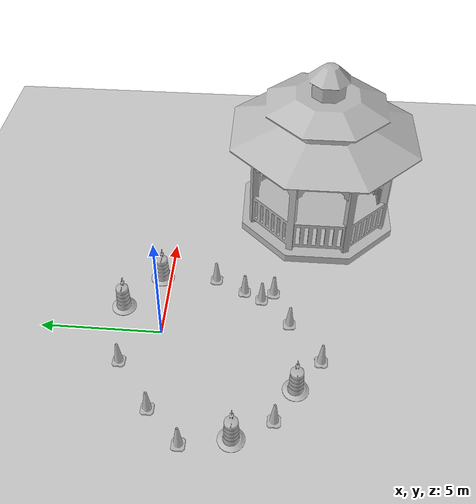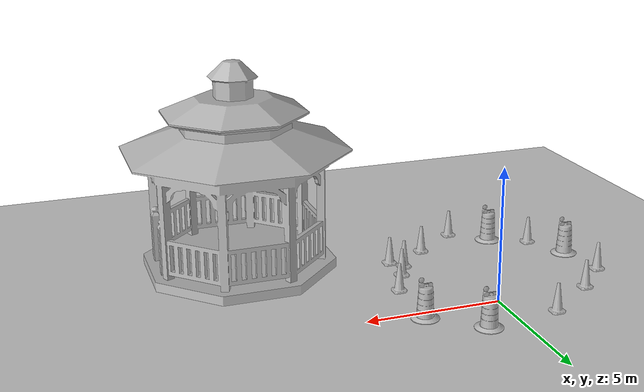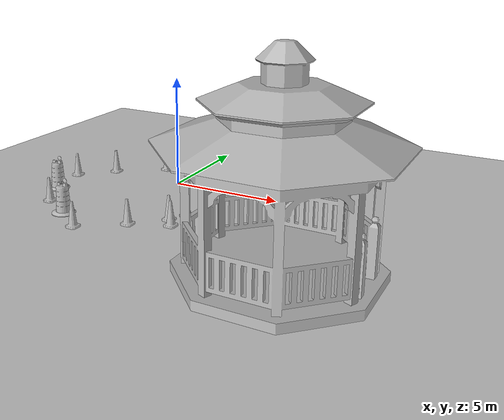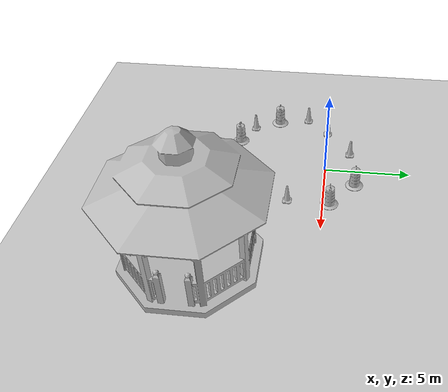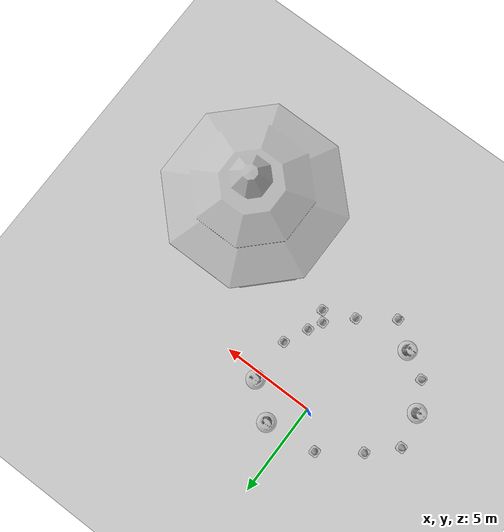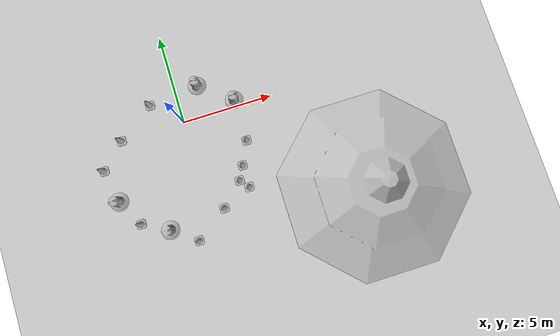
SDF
<sdf version="1.7">
 <world name="default">
  <light name="sun" type="directional">
   <pose>0 0 10 0 -0 0</pose>
   <diffuse>0.8 0.8 0.8 1</diffuse>
   <specular>0.2 0.2 0.2 1</specular>
   <attenuation>
    <range>1000</range>
    <constant>0.9</constant>
    <linear>0.01</linear>
    <quadratic>0.001</quadratic>
   </attenuation>
   <direction>-0.5 0.1 -0.9</direction>
   <spot><inner_angle>0</inner_angle><outer_angle>0</outer_angle><falloff>0</falloff></spot>
  </light>
  <model name="ground_plane">
   <static>1</static>
   <link name="link">
    <collision name="collision">
     <geometry><plane><normal>0 0 1</normal><size>100 100</size></plane></geometry>
     <surface>
      <contact><collide_bitmask>65535</collide_bitmask></contact>
      <friction><ode><mu>100</mu><mu2>50</mu2></ode></friction>
     </surface>
    </collision>
    <visual name="visual">
     <cast_shadows>0</cast_shadows>
     <geometry><plane><normal>0 0 1</normal><size>100 100</size></plane></geometry>
     <material>
      <script><uri>file://media/materials/scripts/gazebo.material</uri><name>Gazebo/Grey</name></script>
     </material>
    </visual>
   </link>
  </model>
  <gravity>0 0 -9.8</gravity>
  <magnetic_field>6e-06 2.3e-05 -4.2e-05</magnetic_field>
  <atmosphere type="adiabatic"/>
  <physics type="ode">
   <max_step_size>0.001</max_step_size>
   <real_time_factor>1</real_time_factor>
   <real_time_update_rate>1000</real_time_update_rate>
  </physics>
  <scene><ambient>0.4 0.4 0.4 1</ambient><background>0.7 0.7 0.7 1</background><shadows>1</shadows></scene>
  <spherical_coordinates>
   <surface_model>EARTH_WGS84</surface_model>
   <latitude_deg>0</latitude_deg>
   <longitude_deg>0</longitude_deg>
   <elevation>0</elevation>
   <heading_deg>0</heading_deg>
  </spherical_coordinates>
  <model name="Construction Barrel">
   <link name="link">
    <inertial>
     <pose>0 0 0.4 0 -0 0</pose>
     <mass>500</mass>
     <inertia><ixx>51.2096</ixx><iyy>51.2096</iyy><izz>25</izz><ixy>0</ixy><ixz>0</ixz><iyz>0</iyz></inertia>
    </inertial>
    <collision name="collision">
     <geometry><mesh><uri>model://construction_barrel/meshes/construction_barrel.dae</uri></mesh></geometry>
    </collision>
    <visual name="visual">
     <geometry><mesh><uri>model://construction_barrel/meshes/construction_barrel.dae</uri></mesh></geometry>
    </visual>
   </link>
   <pose>1.25835 1.76329 -2e-06 7e-06 -2e-06 -3.8e-05</pose>
  </model>
  <model name="Construction Barrel_0">
   <link name="link">
    <inertial>
     <pose>0 0 0.4 0 -0 0</pose>
     <mass>500</mass>
     <inertia><ixx>51.2096</ixx><iyy>51.2096</iyy><izz>25</izz><ixy>0</ixy><ixz>0</ixz><iyz>0</iyz></inertia>
    </inertial>
    <collision name="collision">
     <geometry><mesh><uri>model://construction_barrel/meshes/construction_barrel.dae</uri></mesh></geometry>
    </collision>
    <visual name="visual">
     <geometry><mesh><uri>model://construction_barrel/meshes/construction_barrel.dae</uri></mesh></geometry>
    </visual>
   </link>
   <pose>3.00366 0.377056 -2e-06 7e-06 -2e-06 -4e-05</pose>
  </model>
  <model name="Construction Cone">
   <link name="link">
    <collision name="collision">
     <geometry>
      <mesh><scale>10 10 10</scale><uri>model://construction_cone/meshes/construction_cone.dae</uri></mesh>
     </geometry>
    </collision>
    <visual name="visual">
     <geometry>
      <mesh><scale>10 10 10</scale><uri>model://construction_cone/meshes/construction_cone.dae</uri></mesh>
     </geometry>
    </visual>
    <inertial>
     <inertia><ixx>1</ixx><ixy>0</ixy><ixz>0</ixz><iyy>1</iyy><iyz>0</iyz><izz>1</izz></inertia>
     <mass>1</mass>
    </inertial>
   </link>
   <pose>-4.901 -1.32267 -5e-06 -4e-06 1e-06 0</pose>
  </model>
  <model name="Construction Cone_0">
   <link name="link">
    <collision name="collision">
     <geometry>
      <mesh><scale>10 10 10</scale><uri>model://construction_cone/meshes/construction_cone.dae</uri></mesh>
     </geometry>
    </collision>
    <visual name="visual">
     <geometry>
      <mesh><scale>10 10 10</scale><uri>model://construction_cone/meshes/construction_cone.dae</uri></mesh>
     </geometry>
    </visual>
    <inertial>
     <inertia><ixx>1</ixx><ixy>0</ixy><ixz>0</ixz><iyy>1</iyy><iyz>0</iyz><izz>1</izz></inertia>
     <mass>1</mass>
    </inertial>
   </link>
   <pose>2 -4 -5e-06 -4e-06 1e-06 0</pose>
  </model>
  <model name="Construction Cone_1">
   <link name="link">
    <collision name="collision">
     <geometry>
      <mesh><scale>10 10 10</scale><uri>model://construction_cone/meshes/construction_cone.dae</uri></mesh>
     </geometry>
    </collision>
    <visual name="visual">
     <geometry>
      <mesh><scale>10 10 10</scale><uri>model://construction_cone/meshes/construction_cone.dae</uri></mesh>
     </geometry>
    </visual>
    <inertial>
     <inertia><ixx>1</ixx><ixy>0</ixy><ixz>0</ixz><iyy>1</iyy><iyz>0</iyz><izz>1</izz></inertia>
     <mass>1</mass>
    </inertial>
   </link>
   <pose>0.772738 -5.18401 -0 0 -0 0</pose>
  </model>
  <model name="Construction Cone_2">
   <link name="link">
    <collision name="collision">
     <geometry>
      <mesh><scale>10 10 10</scale><uri>model://construction_cone/meshes/construction_cone.dae</uri></mesh>
     </geometry>
    </collision>
    <visual name="visual">
     <geometry>
      <mesh><scale>10 10 10</scale><uri>model://construction_cone/meshes/construction_cone.dae</uri></mesh>
     </geometry>
    </visual>
    <inertial>
     <inertia><ixx>1</ixx><ixy>0</ixy><ixz>0</ixz><iyy>1</iyy><iyz>0</iyz><izz>1</izz></inertia>
     <mass>1</mass>
    </inertial>
   </link>
   <pose>3 -2 -0 0 -0 0</pose>
  </model>
  <model name="Construction Cone_3">
   <link name="link">
    <collision name="collision">
     <geometry>
      <mesh><scale>10 10 10</scale><uri>model://construction_cone/meshes/construction_cone.dae</uri></mesh>
     </geometry>
    </collision>
    <visual name="visual">
     <geometry>
      <mesh><scale>10 10 10</scale><uri>model://construction_cone/meshes/construction_cone.dae</uri></mesh>
     </geometry>
    </visual>
    <inertial>
     <inertia><ixx>1</ixx><ixy>0</ixy><ixz>0</ixz><iyy>1</iyy><iyz>0</iyz><izz>1</izz></inertia>
     <mass>1</mass>
    </inertial>
   </link>
   <pose>-1.54396 1.4514 -9e-06 -1e-06 -0 -0</pose>
  </model>
  <model name="Construction Cone_4">
   <link name="link">
    <collision name="collision">
     <geometry>
      <mesh><scale>10 10 10</scale><uri>model://construction_cone/meshes/construction_cone.dae</uri></mesh>
     </geometry>
    </collision>
    <visual name="visual">
     <geometry>
      <mesh><scale>10 10 10</scale><uri>model://construction_cone/meshes/construction_cone.dae</uri></mesh>
     </geometry>
    </visual>
    <inertial>
     <inertia><ixx>1</ixx><ixy>0</ixy><ixz>0</ixz><iyy>1</iyy><iyz>0</iyz><izz>1</izz></inertia>
     <mass>1</mass>
    </inertial>
   </link>
   <pose>-1 -6.44429 -0 0 -0 0</pose>
  </model>
  <model name="Construction Cone_5">
   <link name="link">
    <collision name="collision">
     <geometry>
      <mesh><scale>10 10 10</scale><uri>model://construction_cone/meshes/construction_cone.dae</uri></mesh>
     </geometry>
    </collision>
    <visual name="visual">
     <geometry>
      <mesh><scale>10 10 10</scale><uri>model://construction_cone/meshes/construction_cone.dae</uri></mesh>
     </geometry>
    </visual>
    <inertial>
     <inertia><ixx>1</ixx><ixy>0</ixy><ixz>0</ixz><iyy>1</iyy><iyz>0</iyz><izz>1</izz></inertia>
     <mass>1</mass>
    </inertial>
   </link>
   <pose>2.38815 -3.2576 -0 0 -1e-06 0</pose>
  </model>
  <model name="Construction Cone_6">
   <link name="link">
    <collision name="collision">
     <geometry>
      <mesh><scale>10 10 10</scale><uri>model://construction_cone/meshes/construction_cone.dae</uri></mesh>
     </geometry>
    </collision>
    <visual name="visual">
     <geometry>
      <mesh><scale>10 10 10</scale><uri>model://construction_cone/meshes/construction_cone.dae</uri></mesh>
     </geometry>
    </visual>
    <inertial>
     <inertia><ixx>1</ixx><ixy>0</ixy><ixz>0</ixz><iyy>1</iyy><iyz>0</iyz><izz>1</izz></inertia>
     <mass>1</mass>
    </inertial>
   </link>
   <pose>2.39316 -4.49605 -5e-06 -3e-06 -0 -0</pose>
  </model>
  <model name="Construction Cone_7">
   <link name="link">
    <collision name="collision">
     <geometry>
      <mesh><scale>10 10 10</scale><uri>model://construction_cone/meshes/construction_cone.dae</uri></mesh>
     </geometry>
    </collision>
    <visual name="visual">
     <geometry>
      <mesh><scale>10 10 10</scale><uri>model://construction_cone/meshes/construction_cone.dae</uri></mesh>
     </geometry>
    </visual>
    <inertial>
     <inertia><ixx>1</ixx><ixy>0</ixy><ixz>0</ixz><iyy>1</iyy><iyz>0</iyz><izz>1</izz></inertia>
     <mass>1</mass>
    </inertial>
   </link>
   <pose>-3.73276 -4.6753 -0 0 -0 0</pose>
  </model>
  <model name="Construction Cone_8">
   <link name="link">
    <collision name="collision">
     <geometry>
      <mesh><scale>10 10 10</scale><uri>model://construction_cone/meshes/construction_cone.dae</uri></mesh>
     </geometry>
    </collision>
    <visual name="visual">
     <geometry>
      <mesh><scale>10 10 10</scale><uri>model://construction_cone/meshes/construction_cone.dae</uri></mesh>
     </geometry>
    </visual>
    <inertial>
     <inertia><ixx>1</ixx><ixy>0</ixy><ixz>0</ixz><iyy>1</iyy><iyz>0</iyz><izz>1</izz></inertia>
     <mass>1</mass>
    </inertial>
   </link>
   <pose>-3.56564 0 -0 0 -1e-06 0</pose>
  </model>
  <model name="Construction Barrel_1">
   <link name="link">
    <inertial>
     <pose>0 0 0.4 0 -0 0</pose>
     <mass>500</mass>
     <inertia><ixx>51.2096</ixx><iyy>51.2096</iyy><izz>25</izz><ixy>0</ixy><ixz>0</ixz><iyz>0</iyz></inertia>
    </inertial>
    <collision name="collision">
     <geometry><mesh><uri>model://construction_barrel/meshes/construction_barrel.dae</uri></mesh></geometry>
    </collision>
    <visual name="visual">
     <geometry><mesh><uri>model://construction_barrel/meshes/construction_barrel.dae</uri></mesh></geometry>
    </visual>
   </link>
   <pose>-4.54536 -3.17508 0 0 0 -0.002701</pose>
  </model>
  <model name="Construction Barrel_2">
   <link name="link">
    <inertial>
     <pose>0 0 0.4 0 -0 0</pose>
     <mass>500</mass>
     <inertia><ixx>51.2096</ixx><iyy>51.2096</iyy><izz>25</izz><ixy>0</ixy><ixz>0</ixz><iyz>0</iyz></inertia>
    </inertial>
    <collision name="collision">
     <geometry><mesh><uri>model://construction_barrel/meshes/construction_barrel.dae</uri></mesh></geometry>
    </collision>
    <visual name="visual">
     <geometry><mesh><uri>model://construction_barrel/meshes/construction_barrel.dae</uri></mesh></geometry>
    </visual>
   </link>
   <pose>-2.31604 -5.45129 -1e-06 3e-06 7e-06 -4.1e-05</pose>
  </model>
  <audio><device>default</device></audio>
  <model name="gazebo">
   <static>1</static>
   <link name="link">
    <collision name="collision">
     <geometry><mesh><scale>3 3 2.5</scale><uri>model://gazebo/meshes/gazebo.dae</uri></mesh></geometry>
    </collision>
    <visual name="visual">
     <geometry><mesh><scale>3 3 2.5</scale><uri>model://gazebo/meshes/gazebo.dae</uri></mesh></geometry>
    </visual>
   </link>
   <pose>7.89828 -6.3658 0 0 -0 0</pose>
  </model>
 </world>
</sdf>
